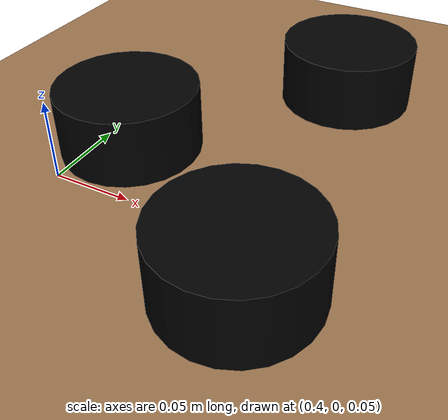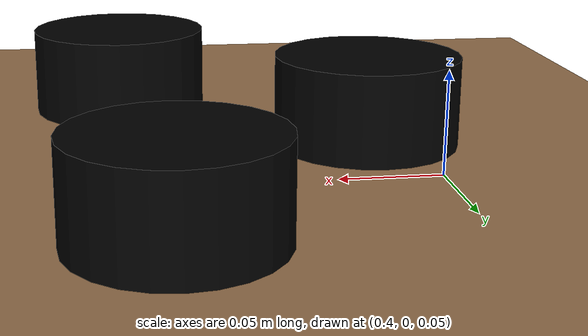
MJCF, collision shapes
<mujoco model="press_three_buttons_gs">
  <compiler meshdir="../../../meshes"/>

  <visual>
    <map znear="0.001"/>
  </visual>

  <asset>
    <!-- meshdir resolved to assets/meshes/ via robotiq.xml compiler -->
    <mesh name="blue_button_mesh"  file="press_three_buttons/blue_button/blue_button_mesh.obj"/>
    <mesh name="green_button_mesh" file="press_three_buttons/green_button/green_button_mesh.obj"/>
    <mesh name="pink_button_mesh"  file="press_three_buttons/pink_button/pink_button_mesh.obj"/>

    <material name="blue_button_mat"  rgba="0.10 0.35 0.95 1" reflectance="0.2"/>
    <material name="green_button_mat" rgba="0.10 0.80 0.25 1" reflectance="0.2"/>
    <material name="pink_button_mat"  rgba="0.95 0.25 0.65 1" reflectance="0.2"/>
  </asset>

  <worldbody>
    <light name="demo_light" pos="0.45 0.06 1.5" dir="0 0 -1"/>
    <geom name="floor" type="plane" size="2 2 0.1" rgba="0.85 0.85 0.85 1"/>

    <!-- Table: matches background GS coordinate frame (table30_01_press_three_buttons.xml).
         Geom center at (0.45, 0.06, 0.0642), half-height=0.01 → top surface z=0.0742. -->
    <geom name="table" pos="0.45 0.06 0.0642" size="0.33 0.525 0.01" type="box"
          contype="1" conaffinity="1" rgba="0.6 0.45 0.3 1"/>

    <!-- BLUE -->
    <body name="button_blue_gs" pos="0.443 0.0197 0.0812">
      <body name="button_blue" pos="0 0 0.012">
        <geom name="button_blue_col" type="cylinder" size="0.040 0.02"
              mass="0.1" rgba="0 0 0 0" contype="1" conaffinity="1"/>
        <geom name="button_blue_vis" type="mesh" mesh="blue_button_mesh" material="blue_button_mat"
              euler="0.959931089 0.052359878 0" density="0" contype="0" conaffinity="0" group="1"/>
        <site name="button_blue_site" pos="0 0 0" size="0.004" rgba="0 0 1 0"/>
      </body>
    </body>

    <!-- GREEN -->
    <body name="button_green_gs" pos="0.5485 -0.0512 0.0812">
      <body name="button_green" pos="0 0 0.012">
        <geom name="button_green_col" type="cylinder" size="0.040 0.02"
              mass="0.1" rgba="0 0 0 0" contype="1" conaffinity="1"/>
        <geom name="button_green_vis" type="mesh" mesh="green_button_mesh" material="green_button_mat"
              euler="0.959931089 0.052359878 0" density="0" contype="0" conaffinity="0" group="1"/>
        <site name="button_green_site" pos="0 0 0" size="0.004" rgba="0 1 0 0"/>
      </body>
    </body>

    <!-- PINK -->
    <body name="button_pink_gs" pos="0.532 0.127 0.0812">
      <body name="button_pink" pos="0 0 0.012">
        <geom name="button_pink_col" type="cylinder" size="0.040 0.02"
              mass="0.1" rgba="0 0 0 0" contype="1" conaffinity="1"/>
        <geom name="button_pink_vis" type="mesh" mesh="pink_button_mesh" material="pink_button_mat"
              euler="0.959931089 0.052359878 0" density="0" contype="0" conaffinity="0" group="1"/>
        <site name="button_pink_site" pos="0 0 0" size="0.004" rgba="1 0 1 0"/>
      </body>
    </body>

    <!-- Cameras matching the background GS coordinate frame (same pos/xyaxes as
         table30_01_press_three_buttons.xml so background.ply aligns correctly). -->
    <camera name="env1_cam" pos="1.042 -0.235 0.660"
            xyaxes="0.364 0.931 -0.000 -0.597 0.234 0.767" fovy="45"/>
    <camera name="env0_cam" pos="0.488 1.0 0.6"
            xyaxes="-0.9994 0.0338 0.0000 -0.0107 -0.3168 0.9484" fovy="45"/>
  </worldbody>

</mujoco>
